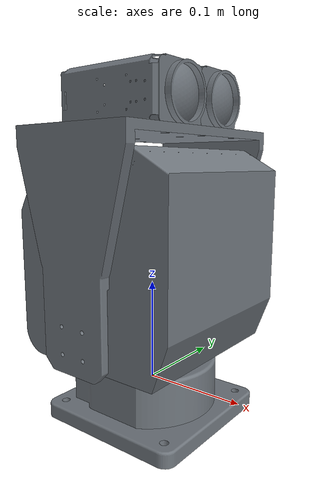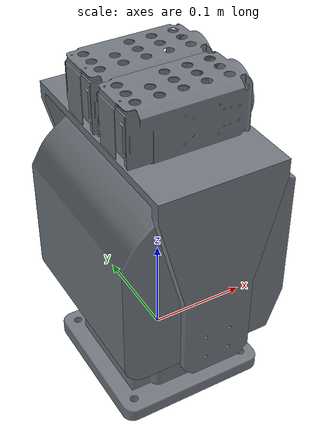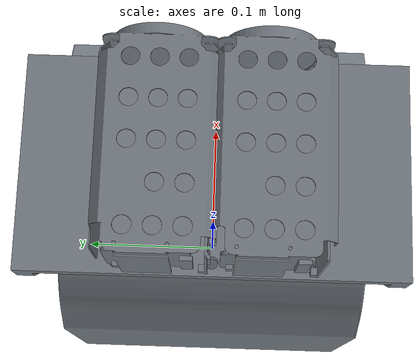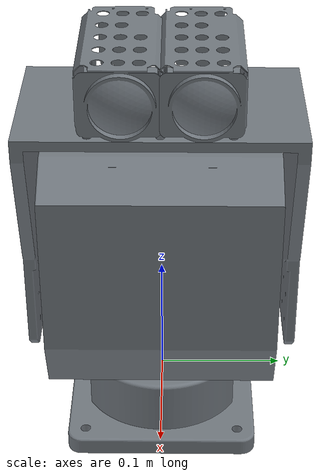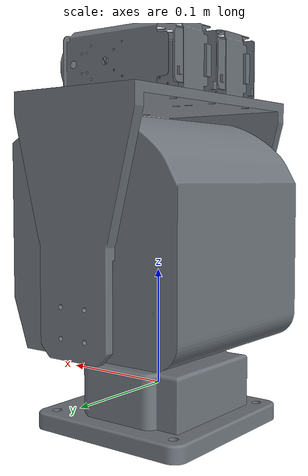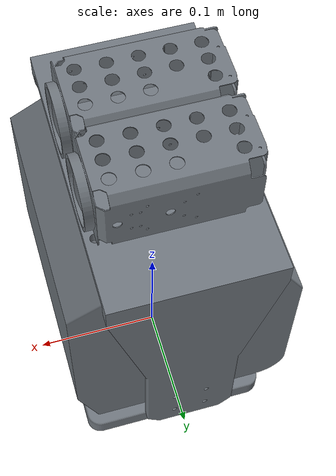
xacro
<?xml version="1.0"?>
<robot xmlns:xacro="http://www.ros.org/wiki/xacro" name="gimbal">

  <!-- Properties -->
  <xacro:property name="pedestal_z" value="0.073" />
  <xacro:property name="pan_z" value="0.194" />
  <xacro:property name="tilt_z" value="0.211" />

  <!-- ============ GIMBAL BASE (Pedestal) ============ -->
  <link name="gimbal_base_link">
    <visual>
      <origin xyz="0 0 0" rpy="${pi} 0 0" />
      <geometry>
        <mesh filename="package://tin3_bot/meshes/gimbal_base.dae" />
      </geometry>
    </visual>
    <collision>
      <geometry>
        <box size="0.155 0.155 0.073" />
      </geometry>
    </collision>
    <inertial>
      <mass value="0.5" />
      <inertia ixx="0.001" ixy="0" ixz="0" iyy="0.001" iyz="0" izz="0.001" />
    </inertial>
  </link>

  <!-- ============ GIMBAL PAN (Big Box) ============ -->
  <link name="gimbal_pan_link">
    <visual>
      <origin xyz="0 0 0" rpy="${pi} 0 ${pi}" />
      <geometry>
        <mesh filename="package://tin3_bot/meshes/gimbal_pan.dae" />
      </geometry>
    </visual>
    <collision>
      <geometry>
        <box size="0.15 0.15 0.15" />  <!-- Smaller -->
      </geometry>
    </collision>
    <inertial>
      <mass value="0.8" />
       <inertia ixx="0.003" ixy="0" ixz="0" iyy="0.003" iyz="0" izz="0.003" />
    </inertial>
  </link>

  <joint name="gimbal_pan_joint" type="revolute">
    <parent link="gimbal_base_link" />
    <child link="gimbal_pan_link" />
    <origin xyz="0 0 ${pedestal_z/2 + pan_z/2}" rpy="0 0 0" />
    <axis xyz="0 0 1" />
    <limit lower="${-pi}" upper="${pi}" effort="10" velocity="1.0" />
    <dynamics damping="0.5" friction="0.1" />
  </joint>

  <!-- ============ GIMBAL TILT (Head) ============ -->
  <link name="gimbal_tilt_link">
    <visual>
      <origin xyz="0 0 0" rpy="${pi} 0 0" />
      <geometry>
        <mesh filename="package://tin3_bot/meshes/gimbal_tilt.dae" />
      </geometry>
    </visual>
    <collision>
      <geometry>
        <box size="0.10 0.18 0.15" />
      </geometry>
    </collision>
    <inertial>
      <mass value="0.5" />
      <inertia ixx="0.0023" ixy="0" ixz="0" iyy="0.0014" iyz="0" izz="0.0018" />
    </inertial>
  </link>

  <joint name="gimbal_tilt_joint" type="revolute">
    <parent link="gimbal_pan_link" />
    <child link="gimbal_tilt_link" />
    <origin xyz="0 0 0.01" rpy="0 0 0" />
    <axis xyz="0 1 0" />
    <limit lower="${-pi/4}" upper="${pi/4}" effort="10" velocity="1.0" />
    <dynamics damping="0.5" friction="0.1" />
  </joint>
  <!-- ============ RGB Camera Link ============ -->
  <link name="gimbal_camera_link">
    <visual>
      <origin xyz="0 0 0" rpy="0 -1.5708 3.1416" />
      <geometry>
        <mesh filename="package://tin3_bot/meshes/camera.dae" />
      </geometry>
    </visual>

    <collision>
      <origin xyz="0 0 0" rpy="0 0 0" />
      <geometry>
        <box size="0.055 0.064 0.123" />
      </geometry>
    </collision>
    <inertial>
      <origin xyz="0 0 0" rpy="0 0 0" />
      <mass value="0.05" />
      <inertia
        ixx="1e-4" ixy="0.0" ixz="0.0"
        iyy="1e-4" iyz="0.0"
        izz="1e-4" />
    </inertial>
  </link>
  <joint name="gimbal_camera_joint" type="fixed">
    <parent link="gimbal_tilt_link" />
    <child link="gimbal_camera_link" />
    <origin xyz="0 -0.03 ${tilt_z/2+0.025}" rpy="0 0 0" />
  </joint>
  <!-- ============ IR Camera Link ============ -->
  <link name="gimbal_ir_camera_link">
    <visual>
      <origin xyz="0 0 0" rpy="0 -1.5708 3.1416" />
      <geometry>
        <mesh filename="package://tin3_bot/meshes/camera.dae" />
      </geometry>
    </visual>
    <collision>
      <geometry>
        <box size="0.055 0.064 0.123" />
      </geometry>
    </collision>
    <inertial>
      <mass value="0.05" />
      <inertia ixx="0.0001" ixy="0" ixz="0" iyy="0.0001" iyz="0" izz="0.0001" />
    </inertial>
  </link>
  <joint name="gimbal_ir_camera_joint" type="fixed">
    <parent link="gimbal_tilt_link" />
    <child link="gimbal_ir_camera_link" />
    <origin xyz="0 0.03 ${tilt_z/2+0.025}" rpy="0 0 0" />
  </joint>
  <!-- RGB Camera Optical Frame -->
  <link name="gimbal_camera_optical_frame" />
  <joint name="gimbal_camera_optical_joint" type="fixed">
    <parent link="gimbal_camera_link" />
    <child link="gimbal_camera_optical_frame" />
    <origin xyz="0 0 0" rpy="${-pi/2} 0 ${-pi/2}" />
  </joint>

  <!-- IR Camera Optical Frame -->
  <link name="gimbal_ir_camera_optical_frame" />
  <joint name="gimbal_ir_camera_optical_joint" type="fixed">
    <parent link="gimbal_ir_camera_link" />
    <child link="gimbal_ir_camera_optical_frame" />
    <origin xyz="0 0 0" rpy="${-pi/2} 0 ${-pi/2}" />
  </joint>
</robot>
